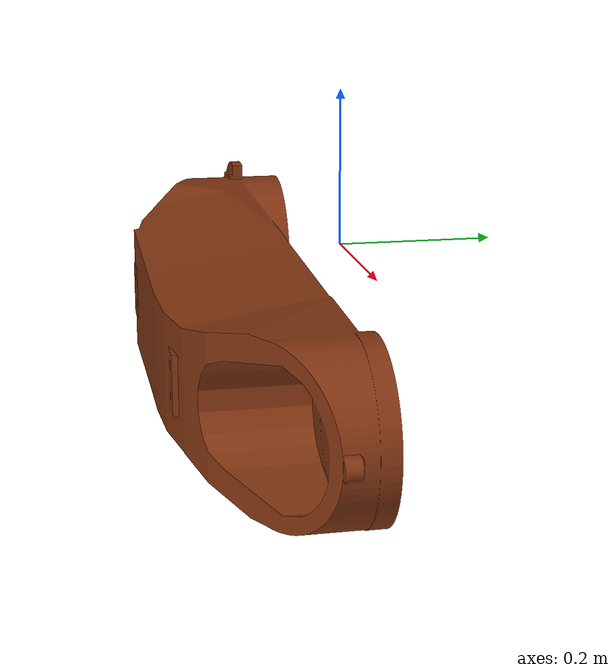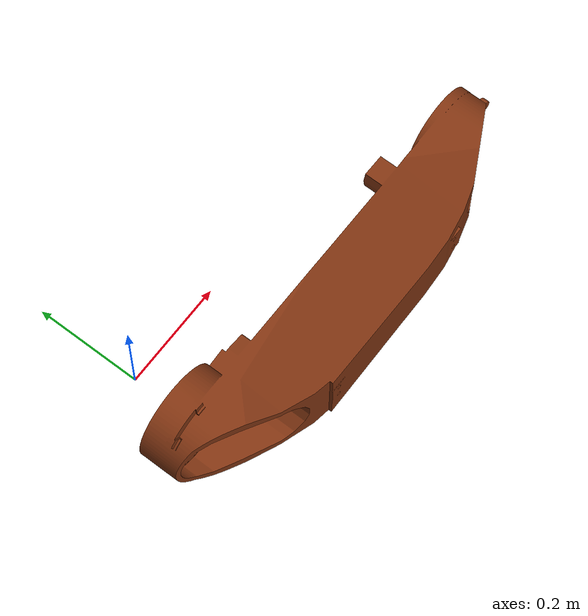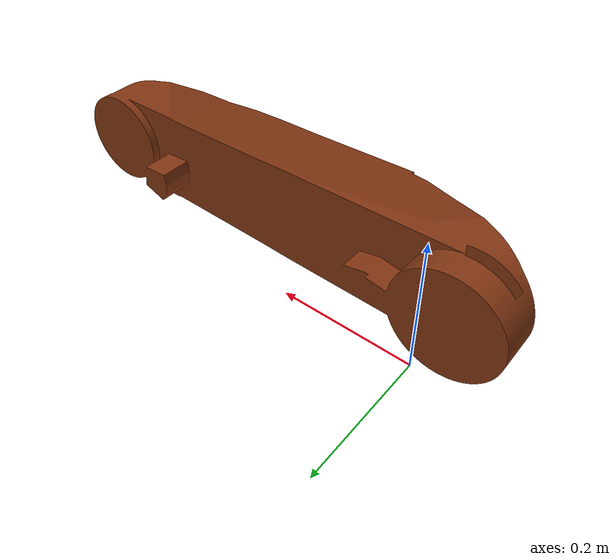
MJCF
<mujoco model="link_2">
  <default>
    <default class="visual">
      <geom group="2" type="mesh" contype="0" conaffinity="0"/>
    </default>
    <default class="collision">
      <geom group="3" type="mesh"/>
    </default>
  </default>
  <asset>
    <material name="RAL2003" specular="0.5" shininess="0.25" rgba="0.512000 0.208814 0.070272 1.000000"/>
    <mesh file="link_2.obj"/>
  </asset>
  <worldbody>
    <body name="link_2">
      <geom material="RAL2003" mesh="link_2" class="visual"/>
      <geom mesh="link_2" class="collision"/>
    </body>
  </worldbody>
</mujoco>
